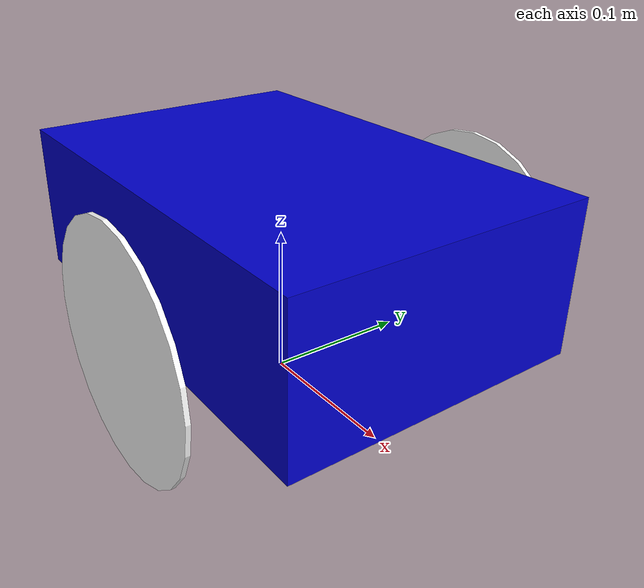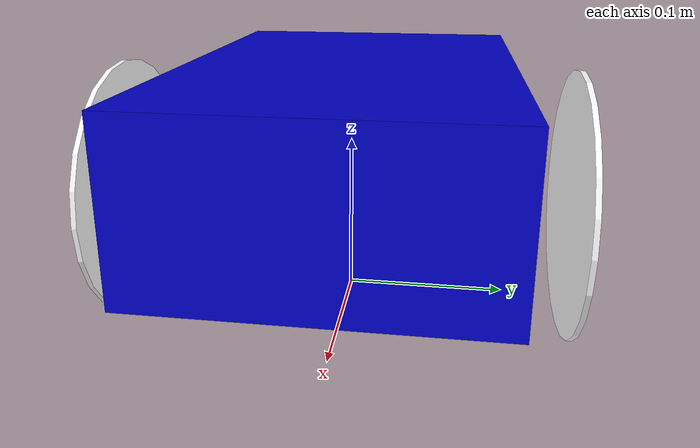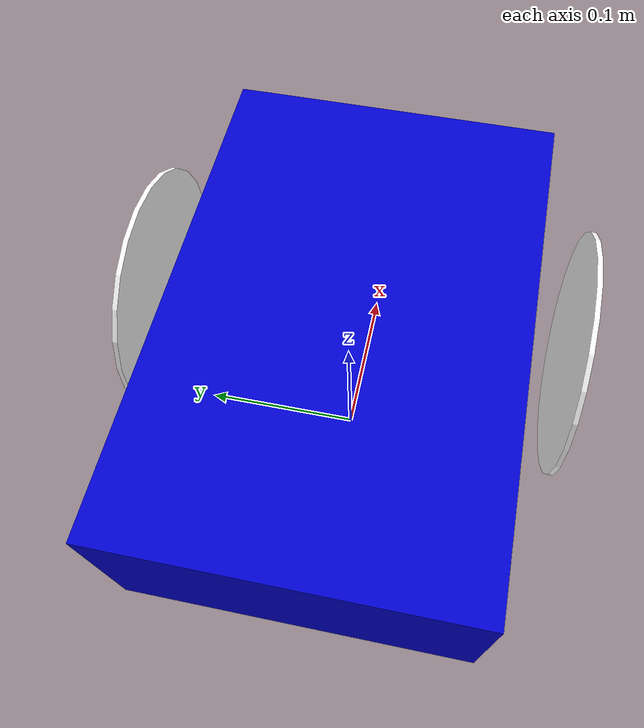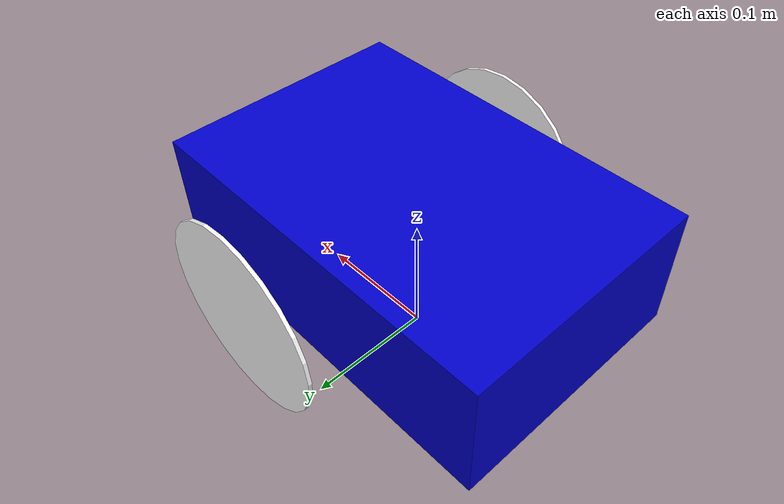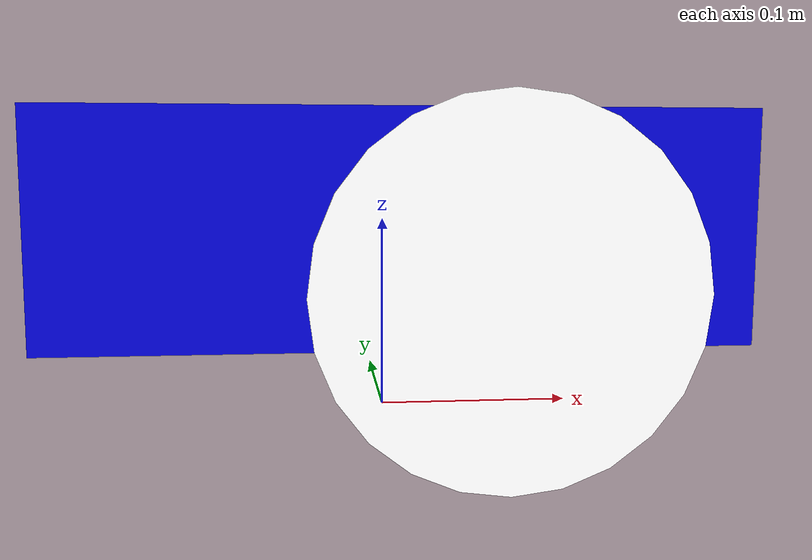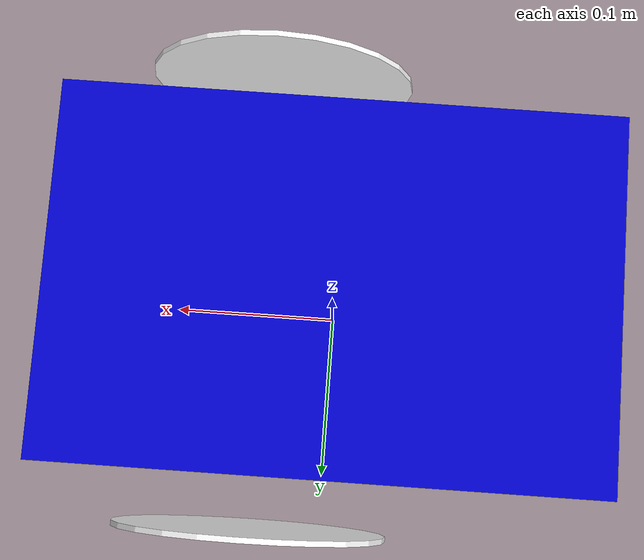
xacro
<?xml version="1.0"?>
<robot name="glide" xmlns:xacro="http://www.ros.org/wiki/xacro">
  <material name="blue">
    <color rgba="0 0 0.8 1"/>
  </material>

  <material name="white">
    <color rgba="1 1 1 1"/>
  </material>

  <xacro:property name="body_width" value="0.2" />
  <xacro:property name="body_length" value="0.3" />
  <xacro:property name="body_height" value="0.1" />
  <xacro:property name="body_center" value="0.1" />

  <xacro:property name="wheel_width" value="0.003" />
  <xacro:property name="wheel_radius" value="0.077" />
  <xacro:property name="wheel_gap" value="0.03175" />
  <xacro:property name="wheel_offset" value="0.0381" />

  <xacro:property name="degrees_45" value="${45 * pi/180}"/>
  <xacro:property name="degrees_90" value="${90 * pi/180}"/>

  <xacro:macro name="steer_wheel" params="name xy_reflect">
    <link name="${name}_steer_wheel">
      <visual>
        <geometry>
          <cylinder length="${wheel_width}" radius="${wheel_radius}"/>
        </geometry>
        <origin rpy="${degrees_90} 0 0" xyz="${wheel_offset} ${xy_reflect * (wheel_gap + body_width/2)} ${wheel_radius}"/>
        <material name="white"/>
      </visual>
      <collision>
        <origin rpy="${degrees_90} 0 0" xyz="${wheel_offset} ${xy_reflect * (wheel_gap + body_width/2)} ${wheel_radius}"/>
        <geometry>
          <cylinder length="${wheel_width}" radius="${wheel_radius}"/>
        </geometry>
      </collision>
      <inertial>
        <origin rpy="${degrees_90} 0 0" xyz="${wheel_offset} ${xy_reflect * (wheel_gap + body_width/2)} ${wheel_radius}"/>
	    </inertial>
    </link>

    <joint name="base_to_${name}_steer_wheel" type="continuous">
      <parent link="base_link"/>
      <child link="${name}_steer_wheel"/>
      <axis xyz="0 1 0"/>
    </joint>
  </xacro:macro>

  <link name="base_link">
    <visual>
      <geometry>
        <box size="${body_length} ${body_width} ${body_height}"/>
      </geometry>
      <origin rpy="0 0 0" xyz="0 0 ${body_center}"/>
      <material name="blue"/>
    </visual>
  </link>

  <xacro:steer_wheel name="right" xy_reflect="-1" />
  <xacro:steer_wheel name="left" xy_reflect="1" />

</robot>
